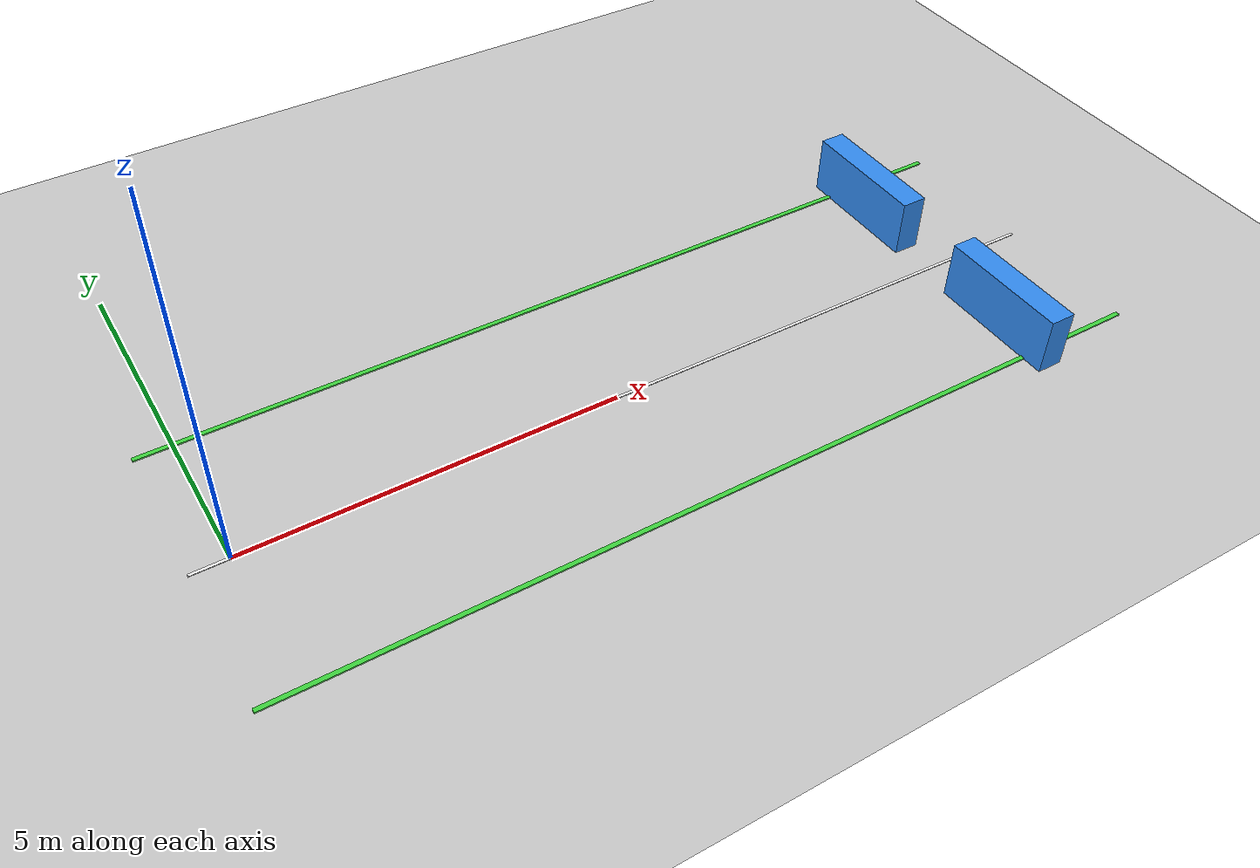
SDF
<?xml version="1.0"?>
<sdf version="1.6">
  <world name="bac_adaptive_clearance">
    <physics name="default_physics" type="ode">
      <real_time_update_rate>1000</real_time_update_rate>
      <max_step_size>0.001</max_step_size>
    </physics>

    <include>
      <uri>model://sun</uri>
    </include>
    <include>
      <uri>model://ground_plane</uri>
    </include>

    <!-- High-contrast lane markers make the detour and recovery visible. -->
    <model name="center_line">
      <static>true</static>
      <pose>5.5 0 0.006 0 0 0</pose>
      <link name="link">
        <visual name="visual">
          <geometry><box><size>12.0 0.04 0.01</size></box></geometry>
          <material><ambient>0.95 0.95 0.95 1</ambient><diffuse>0.95 0.95 0.95 1</diffuse></material>
        </visual>
      </link>
    </model>
    <model name="left_boundary">
      <static>true</static>
      <pose>5.5 2.0 0.01 0 0 0</pose>
      <link name="link">
        <visual name="visual">
          <geometry><box><size>12.0 0.06 0.02</size></box></geometry>
          <material><ambient>0.25 0.85 0.25 1</ambient><diffuse>0.25 0.85 0.25 1</diffuse></material>
        </visual>
      </link>
    </model>
    <model name="right_boundary">
      <static>true</static>
      <pose>5.5 -2.0 0.01 0 0 0</pose>
      <link name="link">
        <visual name="visual">
          <geometry><box><size>12.0 0.06 0.02</size></box></geometry>
          <material><ambient>0.25 0.85 0.25 1</ambient><diffuse>0.25 0.85 0.25 1</diffuse></material>
        </visual>
      </link>
    </model>

    <!-- A 1.0 m opening demonstrates that the same controller does not keep
         the open-space detour when the available free space becomes narrow. -->
    <model name="narrow_gate_left">
      <static>true</static>
      <pose>10.0 1.4 0.4 0 0 0</pose>
      <link name="link">
        <collision name="collision">
          <geometry><box><size>0.35 1.8 0.8</size></box></geometry>
        </collision>
        <visual name="visual">
          <geometry><box><size>0.35 1.8 0.8</size></box></geometry>
          <material><ambient>0.20 0.55 0.95 1</ambient><diffuse>0.20 0.55 0.95 1</diffuse></material>
        </visual>
      </link>
    </model>
    <model name="narrow_gate_right">
      <static>true</static>
      <pose>10.0 -1.4 0.4 0 0 0</pose>
      <link name="link">
        <collision name="collision">
          <geometry><box><size>0.35 1.8 0.8</size></box></geometry>
        </collision>
        <visual name="visual">
          <geometry><box><size>0.35 1.8 0.8</size></box></geometry>
          <material><ambient>0.20 0.55 0.95 1</ambient><diffuse>0.20 0.55 0.95 1</diffuse></material>
        </visual>
      </link>
    </model>

    <!-- A fixed ROS camera supplies frames without requiring gzclient/X11. -->
    <model name="overhead_camera">
      <static>true</static>
      <pose>5.5 0 10.0 0 1.57079632679 1.57079632679</pose>
      <link name="camera_link">
        <sensor name="camera" type="camera">
          <always_on>true</always_on>
          <update_rate>12</update_rate>
          <visualize>true</visualize>
          <camera>
            <horizontal_fov>1.15</horizontal_fov>
            <image><width>960</width><height>540</height><format>R8G8B8</format></image>
            <clip><near>0.1</near><far>30.0</far></clip>
          </camera>
          <plugin name="overhead_camera_ros" filename="libgazebo_ros_camera.so">
            <ros>
              <namespace>/demo_camera</namespace>
            </ros>
            <camera_name>overhead</camera_name>
            <frame_name>overhead_camera</frame_name>
          </plugin>
        </sensor>
      </link>
    </model>

    <scene>
      <ambient>0.65 0.65 0.65 1</ambient>
      <background>0.12 0.15 0.20 1</background>
      <shadows>false</shadows>
    </scene>
  </world>
</sdf>
